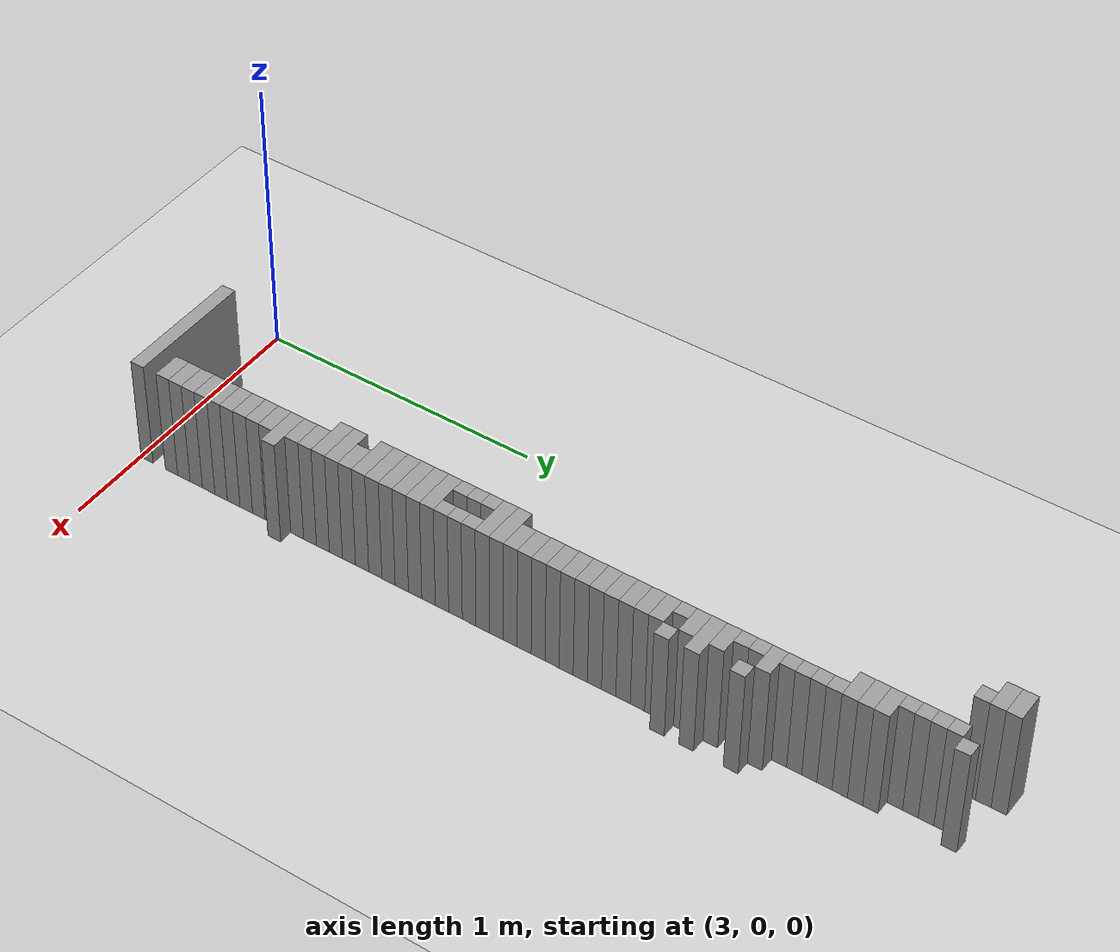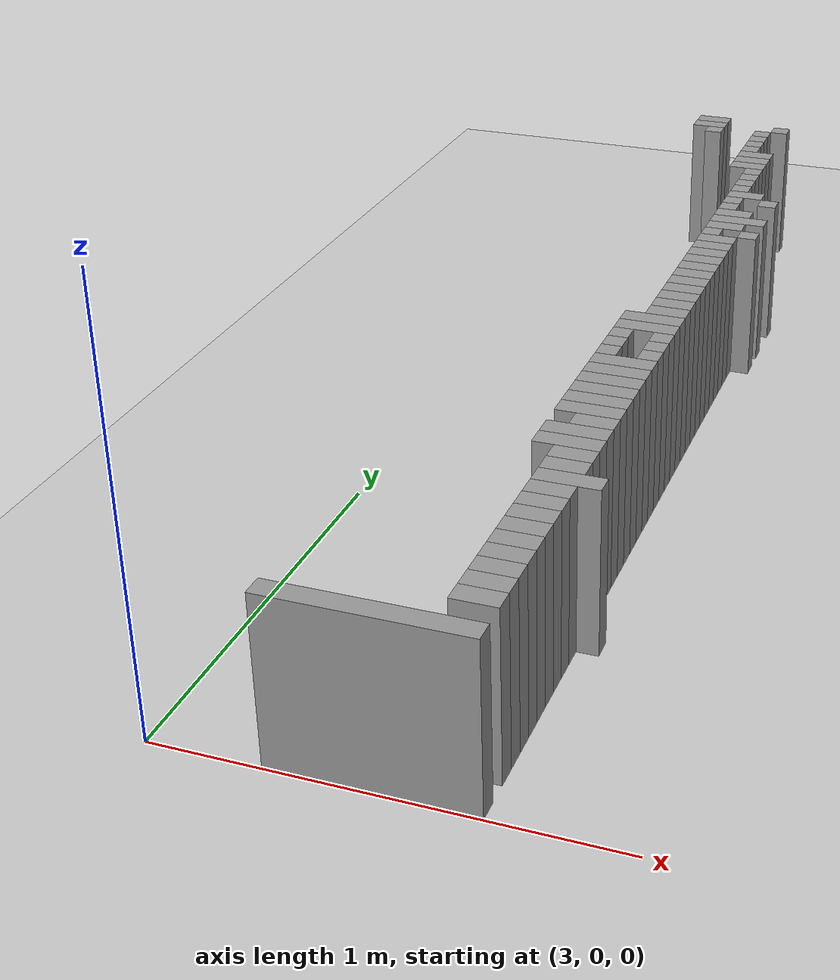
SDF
<sdf version="1.6">
 <world name="parking_mission">
  <include><uri>model://sun</uri></include>
  <include><uri>model://ground_plane</uri></include>
  <model name="wall_198">
   <static>true</static>
   <pose>3.4000 2.9250 0.2000 0 0 0</pose>
   <link name="link">
    <collision name="collision">
     <geometry><box><size>0.1000 0.0500 0.4000</size></box></geometry>
     <surface>
      <contact><ode><kp>20000.0</kp><kd>10.0</kd><max_vel>0.5</max_vel><min_depth>0.001</min_depth></ode></contact>
      <friction><ode><mu>1.0</mu><mu2>1.0</mu2></ode></friction>
     </surface>
    </collision>
    <visual name="visual">
     <geometry><box><size>0.1000 0.0500 0.4000</size></box></geometry>
     <material>
      <script><name>Gazebo/Grey</name><uri>file://media/materials/scripts/gazebo.material</uri></script>
     </material>
    </visual>
   </link>
  </model>
  <model name="wall_202">
   <static>true</static>
   <pose>3.4000 2.8750 0.2000 0 0 0</pose>
   <link name="link">
    <collision name="collision">
     <geometry><box><size>0.1000 0.0500 0.4000</size></box></geometry>
     <surface>
      <contact><ode><kp>20000.0</kp><kd>10.0</kd><max_vel>0.5</max_vel><min_depth>0.001</min_depth></ode></contact>
      <friction><ode><mu>1.0</mu><mu2>1.0</mu2></ode></friction>
     </surface>
    </collision>
    <visual name="visual">
     <geometry><box><size>0.1000 0.0500 0.4000</size></box></geometry>
     <material>
      <script><name>Gazebo/Grey</name><uri>file://media/materials/scripts/gazebo.material</uri></script>
     </material>
    </visual>
   </link>
  </model>
  <model name="wall_203">
   <static>true</static>
   <pose>3.6250 2.8750 0.2000 0 0 0</pose>
   <link name="link">
    <collision name="collision">
     <geometry><box><size>0.0500 0.0500 0.4000</size></box></geometry>
     <surface>
      <contact><ode><kp>20000.0</kp><kd>10.0</kd><max_vel>0.5</max_vel><min_depth>0.001</min_depth></ode></contact>
      <friction><ode><mu>1.0</mu><mu2>1.0</mu2></ode></friction>
     </surface>
    </collision>
    <visual name="visual">
     <geometry><box><size>0.0500 0.0500 0.4000</size></box></geometry>
     <material>
      <script><name>Gazebo/Grey</name><uri>file://media/materials/scripts/gazebo.material</uri></script>
     </material>
    </visual>
   </link>
  </model>
  <model name="wall_208">
   <static>true</static>
   <pose>3.4250 2.8250 0.2000 0 0 0</pose>
   <link name="link">
    <collision name="collision">
     <geometry><box><size>0.0500 0.0500 0.4000</size></box></geometry>
     <surface>
      <contact><ode><kp>20000.0</kp><kd>10.0</kd><max_vel>0.5</max_vel><min_depth>0.001</min_depth></ode></contact>
      <friction><ode><mu>1.0</mu><mu2>1.0</mu2></ode></friction>
     </surface>
    </collision>
    <visual name="visual">
     <geometry><box><size>0.0500 0.0500 0.4000</size></box></geometry>
     <material>
      <script><name>Gazebo/Grey</name><uri>file://media/materials/scripts/gazebo.material</uri></script>
     </material>
    </visual>
   </link>
  </model>
  <model name="wall_209">
   <static>true</static>
   <pose>3.5750 2.8250 0.2000 0 0 0</pose>
   <link name="link">
    <collision name="collision">
     <geometry><box><size>0.0500 0.0500 0.4000</size></box></geometry>
     <surface>
      <contact><ode><kp>20000.0</kp><kd>10.0</kd><max_vel>0.5</max_vel><min_depth>0.001</min_depth></ode></contact>
      <friction><ode><mu>1.0</mu><mu2>1.0</mu2></ode></friction>
     </surface>
    </collision>
    <visual name="visual">
     <geometry><box><size>0.0500 0.0500 0.4000</size></box></geometry>
     <material>
      <script><name>Gazebo/Grey</name><uri>file://media/materials/scripts/gazebo.material</uri></script>
     </material>
    </visual>
   </link>
  </model>
  <model name="wall_214">
   <static>true</static>
   <pose>3.5750 2.7750 0.2000 0 0 0</pose>
   <link name="link">
    <collision name="collision">
     <geometry><box><size>0.0500 0.0500 0.4000</size></box></geometry>
     <surface>
      <contact><ode><kp>20000.0</kp><kd>10.0</kd><max_vel>0.5</max_vel><min_depth>0.001</min_depth></ode></contact>
      <friction><ode><mu>1.0</mu><mu2>1.0</mu2></ode></friction>
     </surface>
    </collision>
    <visual name="visual">
     <geometry><box><size>0.0500 0.0500 0.4000</size></box></geometry>
     <material>
      <script><name>Gazebo/Grey</name><uri>file://media/materials/scripts/gazebo.material</uri></script>
     </material>
    </visual>
   </link>
  </model>
  <model name="wall_219">
   <static>true</static>
   <pose>3.5750 2.7250 0.2000 0 0 0</pose>
   <link name="link">
    <collision name="collision">
     <geometry><box><size>0.0500 0.0500 0.4000</size></box></geometry>
     <surface>
      <contact><ode><kp>20000.0</kp><kd>10.0</kd><max_vel>0.5</max_vel><min_depth>0.001</min_depth></ode></contact>
      <friction><ode><mu>1.0</mu><mu2>1.0</mu2></ode></friction>
     </surface>
    </collision>
    <visual name="visual">
     <geometry><box><size>0.0500 0.0500 0.4000</size></box></geometry>
     <material>
      <script><name>Gazebo/Grey</name><uri>file://media/materials/scripts/gazebo.material</uri></script>
     </material>
    </visual>
   </link>
  </model>
  <model name="wall_224">
   <static>true</static>
   <pose>3.5750 2.6750 0.2000 0 0 0</pose>
   <link name="link">
    <collision name="collision">
     <geometry><box><size>0.0500 0.0500 0.4000</size></box></geometry>
     <surface>
      <contact><ode><kp>20000.0</kp><kd>10.0</kd><max_vel>0.5</max_vel><min_depth>0.001</min_depth></ode></contact>
      <friction><ode><mu>1.0</mu><mu2>1.0</mu2></ode></friction>
     </surface>
    </collision>
    <visual name="visual">
     <geometry><box><size>0.0500 0.0500 0.4000</size></box></geometry>
     <material>
      <script><name>Gazebo/Grey</name><uri>file://media/materials/scripts/gazebo.material</uri></script>
     </material>
    </visual>
   </link>
  </model>
  <model name="wall_230">
   <static>true</static>
   <pose>3.6000 2.6250 0.2000 0 0 0</pose>
   <link name="link">
    <collision name="collision">
     <geometry><box><size>0.1000 0.0500 0.4000</size></box></geometry>
     <surface>
      <contact><ode><kp>20000.0</kp><kd>10.0</kd><max_vel>0.5</max_vel><min_depth>0.001</min_depth></ode></contact>
      <friction><ode><mu>1.0</mu><mu2>1.0</mu2></ode></friction>
     </surface>
    </collision>
    <visual name="visual">
     <geometry><box><size>0.1000 0.0500 0.4000</size></box></geometry>
     <material>
      <script><name>Gazebo/Grey</name><uri>file://media/materials/scripts/gazebo.material</uri></script>
     </material>
    </visual>
   </link>
  </model>
  <model name="wall_235">
   <static>true</static>
   <pose>3.6000 2.5750 0.2000 0 0 0</pose>
   <link name="link">
    <collision name="collision">
     <geometry><box><size>0.1000 0.0500 0.4000</size></box></geometry>
     <surface>
      <contact><ode><kp>20000.0</kp><kd>10.0</kd><max_vel>0.5</max_vel><min_depth>0.001</min_depth></ode></contact>
      <friction><ode><mu>1.0</mu><mu2>1.0</mu2></ode></friction>
     </surface>
    </collision>
    <visual name="visual">
     <geometry><box><size>0.1000 0.0500 0.4000</size></box></geometry>
     <material>
      <script><name>Gazebo/Grey</name><uri>file://media/materials/scripts/gazebo.material</uri></script>
     </material>
    </visual>
   </link>
  </model>
  <model name="wall_240">
   <static>true</static>
   <pose>3.6000 2.5250 0.2000 0 0 0</pose>
   <link name="link">
    <collision name="collision">
     <geometry><box><size>0.1000 0.0500 0.4000</size></box></geometry>
     <surface>
      <contact><ode><kp>20000.0</kp><kd>10.0</kd><max_vel>0.5</max_vel><min_depth>0.001</min_depth></ode></contact>
      <friction><ode><mu>1.0</mu><mu2>1.0</mu2></ode></friction>
     </surface>
    </collision>
    <visual name="visual">
     <geometry><box><size>0.1000 0.0500 0.4000</size></box></geometry>
     <material>
      <script><name>Gazebo/Grey</name><uri>file://media/materials/scripts/gazebo.material</uri></script>
     </material>
    </visual>
   </link>
  </model>
  <model name="wall_244">
   <static>true</static>
   <pose>3.6250 2.4750 0.2000 0 0 0</pose>
   <link name="link">
    <collision name="collision">
     <geometry><box><size>0.0500 0.0500 0.4000</size></box></geometry>
     <surface>
      <contact><ode><kp>20000.0</kp><kd>10.0</kd><max_vel>0.5</max_vel><min_depth>0.001</min_depth></ode></contact>
      <friction><ode><mu>1.0</mu><mu2>1.0</mu2></ode></friction>
     </surface>
    </collision>
    <visual name="visual">
     <geometry><box><size>0.0500 0.0500 0.4000</size></box></geometry>
     <material>
      <script><name>Gazebo/Grey</name><uri>file://media/materials/scripts/gazebo.material</uri></script>
     </material>
    </visual>
   </link>
  </model>
  <model name="wall_248">
   <static>true</static>
   <pose>3.6250 2.4250 0.2000 0 0 0</pose>
   <link name="link">
    <collision name="collision">
     <geometry><box><size>0.0500 0.0500 0.4000</size></box></geometry>
     <surface>
      <contact><ode><kp>20000.0</kp><kd>10.0</kd><max_vel>0.5</max_vel><min_depth>0.001</min_depth></ode></contact>
      <friction><ode><mu>1.0</mu><mu2>1.0</mu2></ode></friction>
     </surface>
    </collision>
    <visual name="visual">
     <geometry><box><size>0.0500 0.0500 0.4000</size></box></geometry>
     <material>
      <script><name>Gazebo/Grey</name><uri>file://media/materials/scripts/gazebo.material</uri></script>
     </material>
    </visual>
   </link>
  </model>
  <model name="wall_251">
   <static>true</static>
   <pose>3.6250 2.3750 0.2000 0 0 0</pose>
   <link name="link">
    <collision name="collision">
     <geometry><box><size>0.0500 0.0500 0.4000</size></box></geometry>
     <surface>
      <contact><ode><kp>20000.0</kp><kd>10.0</kd><max_vel>0.5</max_vel><min_depth>0.001</min_depth></ode></contact>
      <friction><ode><mu>1.0</mu><mu2>1.0</mu2></ode></friction>
     </surface>
    </collision>
    <visual name="visual">
     <geometry><box><size>0.0500 0.0500 0.4000</size></box></geometry>
     <material>
      <script><name>Gazebo/Grey</name><uri>file://media/materials/scripts/gazebo.material</uri></script>
     </material>
    </visual>
   </link>
  </model>
  <model name="wall_254">
   <static>true</static>
   <pose>3.6250 2.3250 0.2000 0 0 0</pose>
   <link name="link">
    <collision name="collision">
     <geometry><box><size>0.0500 0.0500 0.4000</size></box></geometry>
     <surface>
      <contact><ode><kp>20000.0</kp><kd>10.0</kd><max_vel>0.5</max_vel><min_depth>0.001</min_depth></ode></contact>
      <friction><ode><mu>1.0</mu><mu2>1.0</mu2></ode></friction>
     </surface>
    </collision>
    <visual name="visual">
     <geometry><box><size>0.0500 0.0500 0.4000</size></box></geometry>
     <material>
      <script><name>Gazebo/Grey</name><uri>file://media/materials/scripts/gazebo.material</uri></script>
     </material>
    </visual>
   </link>
  </model>
  <model name="wall_257">
   <static>true</static>
   <pose>3.6500 2.2750 0.2000 0 0 0</pose>
   <link name="link">
    <collision name="collision">
     <geometry><box><size>0.1000 0.0500 0.4000</size></box></geometry>
     <surface>
      <contact><ode><kp>20000.0</kp><kd>10.0</kd><max_vel>0.5</max_vel><min_depth>0.001</min_depth></ode></contact>
      <friction><ode><mu>1.0</mu><mu2>1.0</mu2></ode></friction>
     </surface>
    </collision>
    <visual name="visual">
     <geometry><box><size>0.1000 0.0500 0.4000</size></box></geometry>
     <material>
      <script><name>Gazebo/Grey</name><uri>file://media/materials/scripts/gazebo.material</uri></script>
     </material>
    </visual>
   </link>
  </model>
  <model name="wall_260">
   <static>true</static>
   <pose>3.6250 2.2250 0.2000 0 0 0</pose>
   <link name="link">
    <collision name="collision">
     <geometry><box><size>0.0500 0.0500 0.4000</size></box></geometry>
     <surface>
      <contact><ode><kp>20000.0</kp><kd>10.0</kd><max_vel>0.5</max_vel><min_depth>0.001</min_depth></ode></contact>
      <friction><ode><mu>1.0</mu><mu2>1.0</mu2></ode></friction>
     </surface>
    </collision>
    <visual name="visual">
     <geometry><box><size>0.0500 0.0500 0.4000</size></box></geometry>
     <material>
      <script><name>Gazebo/Grey</name><uri>file://media/materials/scripts/gazebo.material</uri></script>
     </material>
    </visual>
   </link>
  </model>
  <model name="wall_261">
   <static>true</static>
   <pose>3.7250 2.2250 0.2000 0 0 0</pose>
   <link name="link">
    <collision name="collision">
     <geometry><box><size>0.0500 0.0500 0.4000</size></box></geometry>
     <surface>
      <contact><ode><kp>20000.0</kp><kd>10.0</kd><max_vel>0.5</max_vel><min_depth>0.001</min_depth></ode></contact>
      <friction><ode><mu>1.0</mu><mu2>1.0</mu2></ode></friction>
     </surface>
    </collision>
    <visual name="visual">
     <geometry><box><size>0.0500 0.0500 0.4000</size></box></geometry>
     <material>
      <script><name>Gazebo/Grey</name><uri>file://media/materials/scripts/gazebo.material</uri></script>
     </material>
    </visual>
   </link>
  </model>
  <model name="wall_264">
   <static>true</static>
   <pose>3.6250 2.1750 0.2000 0 0 0</pose>
   <link name="link">
    <collision name="collision">
     <geometry><box><size>0.0500 0.0500 0.4000</size></box></geometry>
     <surface>
      <contact><ode><kp>20000.0</kp><kd>10.0</kd><max_vel>0.5</max_vel><min_depth>0.001</min_depth></ode></contact>
      <friction><ode><mu>1.0</mu><mu2>1.0</mu2></ode></friction>
     </surface>
    </collision>
    <visual name="visual">
     <geometry><box><size>0.0500 0.0500 0.4000</size></box></geometry>
     <material>
      <script><name>Gazebo/Grey</name><uri>file://media/materials/scripts/gazebo.material</uri></script>
     </material>
    </visual>
   </link>
  </model>
  <model name="wall_267">
   <static>true</static>
   <pose>3.6500 2.1250 0.2000 0 0 0</pose>
   <link name="link">
    <collision name="collision">
     <geometry><box><size>0.1000 0.0500 0.4000</size></box></geometry>
     <surface>
      <contact><ode><kp>20000.0</kp><kd>10.0</kd><max_vel>0.5</max_vel><min_depth>0.001</min_depth></ode></contact>
      <friction><ode><mu>1.0</mu><mu2>1.0</mu2></ode></friction>
     </surface>
    </collision>
    <visual name="visual">
     <geometry><box><size>0.1000 0.0500 0.4000</size></box></geometry>
     <material>
      <script><name>Gazebo/Grey</name><uri>file://media/materials/scripts/gazebo.material</uri></script>
     </material>
    </visual>
   </link>
  </model>
  <model name="wall_270">
   <static>true</static>
   <pose>3.6750 2.0750 0.2000 0 0 0</pose>
   <link name="link">
    <collision name="collision">
     <geometry><box><size>0.1500 0.0500 0.4000</size></box></geometry>
     <surface>
      <contact><ode><kp>20000.0</kp><kd>10.0</kd><max_vel>0.5</max_vel><min_depth>0.001</min_depth></ode></contact>
      <friction><ode><mu>1.0</mu><mu2>1.0</mu2></ode></friction>
     </surface>
    </collision>
    <visual name="visual">
     <geometry><box><size>0.1500 0.0500 0.4000</size></box></geometry>
     <material>
      <script><name>Gazebo/Grey</name><uri>file://media/materials/scripts/gazebo.material</uri></script>
     </material>
    </visual>
   </link>
  </model>
  <model name="wall_273">
   <static>true</static>
   <pose>3.6500 2.0250 0.2000 0 0 0</pose>
   <link name="link">
    <collision name="collision">
     <geometry><box><size>0.1000 0.0500 0.4000</size></box></geometry>
     <surface>
      <contact><ode><kp>20000.0</kp><kd>10.0</kd><max_vel>0.5</max_vel><min_depth>0.001</min_depth></ode></contact>
      <friction><ode><mu>1.0</mu><mu2>1.0</mu2></ode></friction>
     </surface>
    </collision>
    <visual name="visual">
     <geometry><box><size>0.1000 0.0500 0.4000</size></box></geometry>
     <material>
      <script><name>Gazebo/Grey</name><uri>file://media/materials/scripts/gazebo.material</uri></script>
     </material>
    </visual>
   </link>
  </model>
  <model name="wall_276">
   <static>true</static>
   <pose>3.6250 1.9750 0.2000 0 0 0</pose>
   <link name="link">
    <collision name="collision">
     <geometry><box><size>0.0500 0.0500 0.4000</size></box></geometry>
     <surface>
      <contact><ode><kp>20000.0</kp><kd>10.0</kd><max_vel>0.5</max_vel><min_depth>0.001</min_depth></ode></contact>
      <friction><ode><mu>1.0</mu><mu2>1.0</mu2></ode></friction>
     </surface>
    </collision>
    <visual name="visual">
     <geometry><box><size>0.0500 0.0500 0.4000</size></box></geometry>
     <material>
      <script><name>Gazebo/Grey</name><uri>file://media/materials/scripts/gazebo.material</uri></script>
     </material>
    </visual>
   </link>
  </model>
  <model name="wall_277">
   <static>true</static>
   <pose>3.7250 1.9750 0.2000 0 0 0</pose>
   <link name="link">
    <collision name="collision">
     <geometry><box><size>0.0500 0.0500 0.4000</size></box></geometry>
     <surface>
      <contact><ode><kp>20000.0</kp><kd>10.0</kd><max_vel>0.5</max_vel><min_depth>0.001</min_depth></ode></contact>
      <friction><ode><mu>1.0</mu><mu2>1.0</mu2></ode></friction>
     </surface>
    </collision>
    <visual name="visual">
     <geometry><box><size>0.0500 0.0500 0.4000</size></box></geometry>
     <material>
      <script><name>Gazebo/Grey</name><uri>file://media/materials/scripts/gazebo.material</uri></script>
     </material>
    </visual>
   </link>
  </model>
  <model name="wall_284">
   <static>true</static>
   <pose>3.6500 1.9250 0.2000 0 0 0</pose>
   <link name="link">
    <collision name="collision">
     <geometry><box><size>0.1000 0.0500 0.4000</size></box></geometry>
     <surface>
      <contact><ode><kp>20000.0</kp><kd>10.0</kd><max_vel>0.5</max_vel><min_depth>0.001</min_depth></ode></contact>
      <friction><ode><mu>1.0</mu><mu2>1.0</mu2></ode></friction>
     </surface>
    </collision>
    <visual name="visual">
     <geometry><box><size>0.1000 0.0500 0.4000</size></box></geometry>
     <material>
      <script><name>Gazebo/Grey</name><uri>file://media/materials/scripts/gazebo.material</uri></script>
     </material>
    </visual>
   </link>
  </model>
  <model name="wall_289">
   <static>true</static>
   <pose>3.6500 1.8750 0.2000 0 0 0</pose>
   <link name="link">
    <collision name="collision">
     <geometry><box><size>0.1000 0.0500 0.4000</size></box></geometry>
     <surface>
      <contact><ode><kp>20000.0</kp><kd>10.0</kd><max_vel>0.5</max_vel><min_depth>0.001</min_depth></ode></contact>
      <friction><ode><mu>1.0</mu><mu2>1.0</mu2></ode></friction>
     </surface>
    </collision>
    <visual name="visual">
     <geometry><box><size>0.1000 0.0500 0.4000</size></box></geometry>
     <material>
      <script><name>Gazebo/Grey</name><uri>file://media/materials/scripts/gazebo.material</uri></script>
     </material>
    </visual>
   </link>
  </model>
  <model name="wall_293">
   <static>true</static>
   <pose>3.6500 1.8250 0.2000 0 0 0</pose>
   <link name="link">
    <collision name="collision">
     <geometry><box><size>0.1000 0.0500 0.4000</size></box></geometry>
     <surface>
      <contact><ode><kp>20000.0</kp><kd>10.0</kd><max_vel>0.5</max_vel><min_depth>0.001</min_depth></ode></contact>
      <friction><ode><mu>1.0</mu><mu2>1.0</mu2></ode></friction>
     </surface>
    </collision>
    <visual name="visual">
     <geometry><box><size>0.1000 0.0500 0.4000</size></box></geometry>
     <material>
      <script><name>Gazebo/Grey</name><uri>file://media/materials/scripts/gazebo.material</uri></script>
     </material>
    </visual>
   </link>
  </model>
  <model name="wall_297">
   <static>true</static>
   <pose>3.6500 1.7750 0.2000 0 0 0</pose>
   <link name="link">
    <collision name="collision">
     <geometry><box><size>0.1000 0.0500 0.4000</size></box></geometry>
     <surface>
      <contact><ode><kp>20000.0</kp><kd>10.0</kd><max_vel>0.5</max_vel><min_depth>0.001</min_depth></ode></contact>
      <friction><ode><mu>1.0</mu><mu2>1.0</mu2></ode></friction>
     </surface>
    </collision>
    <visual name="visual">
     <geometry><box><size>0.1000 0.0500 0.4000</size></box></geometry>
     <material>
      <script><name>Gazebo/Grey</name><uri>file://media/materials/scripts/gazebo.material</uri></script>
     </material>
    </visual>
   </link>
  </model>
  <model name="wall_300">
   <static>true</static>
   <pose>3.6500 1.7250 0.2000 0 0 0</pose>
   <link name="link">
    <collision name="collision">
     <geometry><box><size>0.1000 0.0500 0.4000</size></box></geometry>
     <surface>
      <contact><ode><kp>20000.0</kp><kd>10.0</kd><max_vel>0.5</max_vel><min_depth>0.001</min_depth></ode></contact>
      <friction><ode><mu>1.0</mu><mu2>1.0</mu2></ode></friction>
     </surface>
    </collision>
    <visual name="visual">
     <geometry><box><size>0.1000 0.0500 0.4000</size></box></geometry>
     <material>
      <script><name>Gazebo/Grey</name><uri>file://media/materials/scripts/gazebo.material</uri></script>
     </material>
    </visual>
   </link>
  </model>
  <model name="wall_302">
   <static>true</static>
   <pose>3.6500 1.6750 0.2000 0 0 0</pose>
   <link name="link">
    <collision name="collision">
     <geometry><box><size>0.1000 0.0500 0.4000</size></box></geometry>
     <surface>
      <contact><ode><kp>20000.0</kp><kd>10.0</kd><max_vel>0.5</max_vel><min_depth>0.001</min_depth></ode></contact>
      <friction><ode><mu>1.0</mu><mu2>1.0</mu2></ode></friction>
     </surface>
    </collision>
    <visual name="visual">
     <geometry><box><size>0.1000 0.0500 0.4000</size></box></geometry>
     <material>
      <script><name>Gazebo/Grey</name><uri>file://media/materials/scripts/gazebo.material</uri></script>
     </material>
    </visual>
   </link>
  </model>
  <model name="wall_304">
   <static>true</static>
   <pose>3.6500 1.6250 0.2000 0 0 0</pose>
   <link name="link">
    <collision name="collision">
     <geometry><box><size>0.1000 0.0500 0.4000</size></box></geometry>
     <surface>
      <contact><ode><kp>20000.0</kp><kd>10.0</kd><max_vel>0.5</max_vel><min_depth>0.001</min_depth></ode></contact>
      <friction><ode><mu>1.0</mu><mu2>1.0</mu2></ode></friction>
     </surface>
    </collision>
    <visual name="visual">
     <geometry><box><size>0.1000 0.0500 0.4000</size></box></geometry>
     <material>
      <script><name>Gazebo/Grey</name><uri>file://media/materials/scripts/gazebo.material</uri></script>
     </material>
    </visual>
   </link>
  </model>
  <model name="wall_306">
   <static>true</static>
   <pose>3.6500 1.5750 0.2000 0 0 0</pose>
   <link name="link">
    <collision name="collision">
     <geometry><box><size>0.1000 0.0500 0.4000</size></box></geometry>
     <surface>
      <contact><ode><kp>20000.0</kp><kd>10.0</kd><max_vel>0.5</max_vel><min_depth>0.001</min_depth></ode></contact>
      <friction><ode><mu>1.0</mu><mu2>1.0</mu2></ode></friction>
     </surface>
    </collision>
    <visual name="visual">
     <geometry><box><size>0.1000 0.0500 0.4000</size></box></geometry>
     <material>
      <script><name>Gazebo/Grey</name><uri>file://media/materials/scripts/gazebo.material</uri></script>
     </material>
    </visual>
   </link>
  </model>
  <model name="wall_308">
   <static>true</static>
   <pose>3.6500 1.5250 0.2000 0 0 0</pose>
   <link name="link">
    <collision name="collision">
     <geometry><box><size>0.1000 0.0500 0.4000</size></box></geometry>
     <surface>
      <contact><ode><kp>20000.0</kp><kd>10.0</kd><max_vel>0.5</max_vel><min_depth>0.001</min_depth></ode></contact>
      <friction><ode><mu>1.0</mu><mu2>1.0</mu2></ode></friction>
     </surface>
    </collision>
    <visual name="visual">
     <geometry><box><size>0.1000 0.0500 0.4000</size></box></geometry>
     <material>
      <script><name>Gazebo/Grey</name><uri>file://media/materials/scripts/gazebo.material</uri></script>
     </material>
    </visual>
   </link>
  </model>
  <model name="wall_310">
   <static>true</static>
   <pose>3.6500 1.4750 0.2000 0 0 0</pose>
   <link name="link">
    <collision name="collision">
     <geometry><box><size>0.1000 0.0500 0.4000</size></box></geometry>
     <surface>
      <contact><ode><kp>20000.0</kp><kd>10.0</kd><max_vel>0.5</max_vel><min_depth>0.001</min_depth></ode></contact>
      <friction><ode><mu>1.0</mu><mu2>1.0</mu2></ode></friction>
     </surface>
    </collision>
    <visual name="visual">
     <geometry><box><size>0.1000 0.0500 0.4000</size></box></geometry>
     <material>
      <script><name>Gazebo/Grey</name><uri>file://media/materials/scripts/gazebo.material</uri></script>
     </material>
    </visual>
   </link>
  </model>
  <model name="wall_312">
   <static>true</static>
   <pose>3.6500 1.4250 0.2000 0 0 0</pose>
   <link name="link">
    <collision name="collision">
     <geometry><box><size>0.1000 0.0500 0.4000</size></box></geometry>
     <surface>
      <contact><ode><kp>20000.0</kp><kd>10.0</kd><max_vel>0.5</max_vel><min_depth>0.001</min_depth></ode></contact>
      <friction><ode><mu>1.0</mu><mu2>1.0</mu2></ode></friction>
     </surface>
    </collision>
    <visual name="visual">
     <geometry><box><size>0.1000 0.0500 0.4000</size></box></geometry>
     <material>
      <script><name>Gazebo/Grey</name><uri>file://media/materials/scripts/gazebo.material</uri></script>
     </material>
    </visual>
   </link>
  </model>
  <model name="wall_314">
   <static>true</static>
   <pose>3.6250 1.3750 0.2000 0 0 0</pose>
   <link name="link">
    <collision name="collision">
     <geometry><box><size>0.1500 0.0500 0.4000</size></box></geometry>
     <surface>
      <contact><ode><kp>20000.0</kp><kd>10.0</kd><max_vel>0.5</max_vel><min_depth>0.001</min_depth></ode></contact>
      <friction><ode><mu>1.0</mu><mu2>1.0</mu2></ode></friction>
     </surface>
    </collision>
    <visual name="visual">
     <geometry><box><size>0.1500 0.0500 0.4000</size></box></geometry>
     <material>
      <script><name>Gazebo/Grey</name><uri>file://media/materials/scripts/gazebo.material</uri></script>
     </material>
    </visual>
   </link>
  </model>
  <model name="wall_316">
   <static>true</static>
   <pose>3.6250 1.3250 0.2000 0 0 0</pose>
   <link name="link">
    <collision name="collision">
     <geometry><box><size>0.1500 0.0500 0.4000</size></box></geometry>
     <surface>
      <contact><ode><kp>20000.0</kp><kd>10.0</kd><max_vel>0.5</max_vel><min_depth>0.001</min_depth></ode></contact>
      <friction><ode><mu>1.0</mu><mu2>1.0</mu2></ode></friction>
     </surface>
    </collision>
    <visual name="visual">
     <geometry><box><size>0.1500 0.0500 0.4000</size></box></geometry>
     <material>
      <script><name>Gazebo/Grey</name><uri>file://media/materials/scripts/gazebo.material</uri></script>
     </material>
    </visual>
   </link>
  </model>
  <model name="wall_318">
   <static>true</static>
   <pose>3.5750 1.2750 0.2000 0 0 0</pose>
   <link name="link">
    <collision name="collision">
     <geometry><box><size>0.0500 0.0500 0.4000</size></box></geometry>
     <surface>
      <contact><ode><kp>20000.0</kp><kd>10.0</kd><max_vel>0.5</max_vel><min_depth>0.001</min_depth></ode></contact>
      <friction><ode><mu>1.0</mu><mu2>1.0</mu2></ode></friction>
     </surface>
    </collision>
    <visual name="visual">
     <geometry><box><size>0.0500 0.0500 0.4000</size></box></geometry>
     <material>
      <script><name>Gazebo/Grey</name><uri>file://media/materials/scripts/gazebo.material</uri></script>
     </material>
    </visual>
   </link>
  </model>
  <model name="wall_319">
   <static>true</static>
   <pose>3.6750 1.2750 0.2000 0 0 0</pose>
   <link name="link">
    <collision name="collision">
     <geometry><box><size>0.0500 0.0500 0.4000</size></box></geometry>
     <surface>
      <contact><ode><kp>20000.0</kp><kd>10.0</kd><max_vel>0.5</max_vel><min_depth>0.001</min_depth></ode></contact>
      <friction><ode><mu>1.0</mu><mu2>1.0</mu2></ode></friction>
     </surface>
    </collision>
    <visual name="visual">
     <geometry><box><size>0.0500 0.0500 0.4000</size></box></geometry>
     <material>
      <script><name>Gazebo/Grey</name><uri>file://media/materials/scripts/gazebo.material</uri></script>
     </material>
    </visual>
   </link>
  </model>
  <model name="wall_321">
   <static>true</static>
   <pose>3.5750 1.2250 0.2000 0 0 0</pose>
   <link name="link">
    <collision name="collision">
     <geometry><box><size>0.0500 0.0500 0.4000</size></box></geometry>
     <surface>
      <contact><ode><kp>20000.0</kp><kd>10.0</kd><max_vel>0.5</max_vel><min_depth>0.001</min_depth></ode></contact>
      <friction><ode><mu>1.0</mu><mu2>1.0</mu2></ode></friction>
     </surface>
    </collision>
    <visual name="visual">
     <geometry><box><size>0.0500 0.0500 0.4000</size></box></geometry>
     <material>
      <script><name>Gazebo/Grey</name><uri>file://media/materials/scripts/gazebo.material</uri></script>
     </material>
    </visual>
   </link>
  </model>
  <model name="wall_322">
   <static>true</static>
   <pose>3.6750 1.2250 0.2000 0 0 0</pose>
   <link name="link">
    <collision name="collision">
     <geometry><box><size>0.0500 0.0500 0.4000</size></box></geometry>
     <surface>
      <contact><ode><kp>20000.0</kp><kd>10.0</kd><max_vel>0.5</max_vel><min_depth>0.001</min_depth></ode></contact>
      <friction><ode><mu>1.0</mu><mu2>1.0</mu2></ode></friction>
     </surface>
    </collision>
    <visual name="visual">
     <geometry><box><size>0.0500 0.0500 0.4000</size></box></geometry>
     <material>
      <script><name>Gazebo/Grey</name><uri>file://media/materials/scripts/gazebo.material</uri></script>
     </material>
    </visual>
   </link>
  </model>
  <model name="wall_325">
   <static>true</static>
   <pose>3.5750 1.1750 0.2000 0 0 0</pose>
   <link name="link">
    <collision name="collision">
     <geometry><box><size>0.0500 0.0500 0.4000</size></box></geometry>
     <surface>
      <contact><ode><kp>20000.0</kp><kd>10.0</kd><max_vel>0.5</max_vel><min_depth>0.001</min_depth></ode></contact>
      <friction><ode><mu>1.0</mu><mu2>1.0</mu2></ode></friction>
     </surface>
    </collision>
    <visual name="visual">
     <geometry><box><size>0.0500 0.0500 0.4000</size></box></geometry>
     <material>
      <script><name>Gazebo/Grey</name><uri>file://media/materials/scripts/gazebo.material</uri></script>
     </material>
    </visual>
   </link>
  </model>
  <model name="wall_326">
   <static>true</static>
   <pose>3.6750 1.1750 0.2000 0 0 0</pose>
   <link name="link">
    <collision name="collision">
     <geometry><box><size>0.0500 0.0500 0.4000</size></box></geometry>
     <surface>
      <contact><ode><kp>20000.0</kp><kd>10.0</kd><max_vel>0.5</max_vel><min_depth>0.001</min_depth></ode></contact>
      <friction><ode><mu>1.0</mu><mu2>1.0</mu2></ode></friction>
     </surface>
    </collision>
    <visual name="visual">
     <geometry><box><size>0.0500 0.0500 0.4000</size></box></geometry>
     <material>
      <script><name>Gazebo/Grey</name><uri>file://media/materials/scripts/gazebo.material</uri></script>
     </material>
    </visual>
   </link>
  </model>
  <model name="wall_328">
   <static>true</static>
   <pose>3.6250 1.1250 0.2000 0 0 0</pose>
   <link name="link">
    <collision name="collision">
     <geometry><box><size>0.1500 0.0500 0.4000</size></box></geometry>
     <surface>
      <contact><ode><kp>20000.0</kp><kd>10.0</kd><max_vel>0.5</max_vel><min_depth>0.001</min_depth></ode></contact>
      <friction><ode><mu>1.0</mu><mu2>1.0</mu2></ode></friction>
     </surface>
    </collision>
    <visual name="visual">
     <geometry><box><size>0.1500 0.0500 0.4000</size></box></geometry>
     <material>
      <script><name>Gazebo/Grey</name><uri>file://media/materials/scripts/gazebo.material</uri></script>
     </material>
    </visual>
   </link>
  </model>
  <model name="wall_330">
   <static>true</static>
   <pose>3.6250 1.0750 0.2000 0 0 0</pose>
   <link name="link">
    <collision name="collision">
     <geometry><box><size>0.1500 0.0500 0.4000</size></box></geometry>
     <surface>
      <contact><ode><kp>20000.0</kp><kd>10.0</kd><max_vel>0.5</max_vel><min_depth>0.001</min_depth></ode></contact>
      <friction><ode><mu>1.0</mu><mu2>1.0</mu2></ode></friction>
     </surface>
    </collision>
    <visual name="visual">
     <geometry><box><size>0.1500 0.0500 0.4000</size></box></geometry>
     <material>
      <script><name>Gazebo/Grey</name><uri>file://media/materials/scripts/gazebo.material</uri></script>
     </material>
    </visual>
   </link>
  </model>
  <model name="wall_334">
   <static>true</static>
   <pose>3.6250 1.0250 0.2000 0 0 0</pose>
   <link name="link">
    <collision name="collision">
     <geometry><box><size>0.1500 0.0500 0.4000</size></box></geometry>
     <surface>
      <contact><ode><kp>20000.0</kp><kd>10.0</kd><max_vel>0.5</max_vel><min_depth>0.001</min_depth></ode></contact>
      <friction><ode><mu>1.0</mu><mu2>1.0</mu2></ode></friction>
     </surface>
    </collision>
    <visual name="visual">
     <geometry><box><size>0.1500 0.0500 0.4000</size></box></geometry>
     <material>
      <script><name>Gazebo/Grey</name><uri>file://media/materials/scripts/gazebo.material</uri></script>
     </material>
    </visual>
   </link>
  </model>
  <model name="wall_337">
   <static>true</static>
   <pose>3.6250 0.9750 0.2000 0 0 0</pose>
   <link name="link">
    <collision name="collision">
     <geometry><box><size>0.1500 0.0500 0.4000</size></box></geometry>
     <surface>
      <contact><ode><kp>20000.0</kp><kd>10.0</kd><max_vel>0.5</max_vel><min_depth>0.001</min_depth></ode></contact>
      <friction><ode><mu>1.0</mu><mu2>1.0</mu2></ode></friction>
     </surface>
    </collision>
    <visual name="visual">
     <geometry><box><size>0.1500 0.0500 0.4000</size></box></geometry>
     <material>
      <script><name>Gazebo/Grey</name><uri>file://media/materials/scripts/gazebo.material</uri></script>
     </material>
    </visual>
   </link>
  </model>
  <model name="wall_340">
   <static>true</static>
   <pose>3.6250 0.9250 0.2000 0 0 0</pose>
   <link name="link">
    <collision name="collision">
     <geometry><box><size>0.1500 0.0500 0.4000</size></box></geometry>
     <surface>
      <contact><ode><kp>20000.0</kp><kd>10.0</kd><max_vel>0.5</max_vel><min_depth>0.001</min_depth></ode></contact>
      <friction><ode><mu>1.0</mu><mu2>1.0</mu2></ode></friction>
     </surface>
    </collision>
    <visual name="visual">
     <geometry><box><size>0.1500 0.0500 0.4000</size></box></geometry>
     <material>
      <script><name>Gazebo/Grey</name><uri>file://media/materials/scripts/gazebo.material</uri></script>
     </material>
    </visual>
   </link>
  </model>
  <model name="wall_343">
   <static>true</static>
   <pose>3.6250 0.8750 0.2000 0 0 0</pose>
   <link name="link">
    <collision name="collision">
     <geometry><box><size>0.1500 0.0500 0.4000</size></box></geometry>
     <surface>
      <contact><ode><kp>20000.0</kp><kd>10.0</kd><max_vel>0.5</max_vel><min_depth>0.001</min_depth></ode></contact>
      <friction><ode><mu>1.0</mu><mu2>1.0</mu2></ode></friction>
     </surface>
    </collision>
    <visual name="visual">
     <geometry><box><size>0.1500 0.0500 0.4000</size></box></geometry>
     <material>
      <script><name>Gazebo/Grey</name><uri>file://media/materials/scripts/gazebo.material</uri></script>
     </material>
    </visual>
   </link>
  </model>
  <model name="wall_345">
   <static>true</static>
   <pose>3.6500 0.8250 0.2000 0 0 0</pose>
   <link name="link">
    <collision name="collision">
     <geometry><box><size>0.1000 0.0500 0.4000</size></box></geometry>
     <surface>
      <contact><ode><kp>20000.0</kp><kd>10.0</kd><max_vel>0.5</max_vel><min_depth>0.001</min_depth></ode></contact>
      <friction><ode><mu>1.0</mu><mu2>1.0</mu2></ode></friction>
     </surface>
    </collision>
    <visual name="visual">
     <geometry><box><size>0.1000 0.0500 0.4000</size></box></geometry>
     <material>
      <script><name>Gazebo/Grey</name><uri>file://media/materials/scripts/gazebo.material</uri></script>
     </material>
    </visual>
   </link>
  </model>
  <model name="wall_348">
   <static>true</static>
   <pose>3.6250 0.7750 0.2000 0 0 0</pose>
   <link name="link">
    <collision name="collision">
     <geometry><box><size>0.1500 0.0500 0.4000</size></box></geometry>
     <surface>
      <contact><ode><kp>20000.0</kp><kd>10.0</kd><max_vel>0.5</max_vel><min_depth>0.001</min_depth></ode></contact>
      <friction><ode><mu>1.0</mu><mu2>1.0</mu2></ode></friction>
     </surface>
    </collision>
    <visual name="visual">
     <geometry><box><size>0.1500 0.0500 0.4000</size></box></geometry>
     <material>
      <script><name>Gazebo/Grey</name><uri>file://media/materials/scripts/gazebo.material</uri></script>
     </material>
    </visual>
   </link>
  </model>
  <model name="wall_351">
   <static>true</static>
   <pose>3.6250 0.7250 0.2000 0 0 0</pose>
   <link name="link">
    <collision name="collision">
     <geometry><box><size>0.1500 0.0500 0.4000</size></box></geometry>
     <surface>
      <contact><ode><kp>20000.0</kp><kd>10.0</kd><max_vel>0.5</max_vel><min_depth>0.001</min_depth></ode></contact>
      <friction><ode><mu>1.0</mu><mu2>1.0</mu2></ode></friction>
     </surface>
    </collision>
    <visual name="visual">
     <geometry><box><size>0.1500 0.0500 0.4000</size></box></geometry>
     <material>
      <script><name>Gazebo/Grey</name><uri>file://media/materials/scripts/gazebo.material</uri></script>
     </material>
    </visual>
   </link>
  </model>
  <model name="wall_354">
   <static>true</static>
   <pose>3.6500 0.6750 0.2000 0 0 0</pose>
   <link name="link">
    <collision name="collision">
     <geometry><box><size>0.1000 0.0500 0.4000</size></box></geometry>
     <surface>
      <contact><ode><kp>20000.0</kp><kd>10.0</kd><max_vel>0.5</max_vel><min_depth>0.001</min_depth></ode></contact>
      <friction><ode><mu>1.0</mu><mu2>1.0</mu2></ode></friction>
     </surface>
    </collision>
    <visual name="visual">
     <geometry><box><size>0.1000 0.0500 0.4000</size></box></geometry>
     <material>
      <script><name>Gazebo/Grey</name><uri>file://media/materials/scripts/gazebo.material</uri></script>
     </material>
    </visual>
   </link>
  </model>
  <model name="wall_356">
   <static>true</static>
   <pose>3.6500 0.6250 0.2000 0 0 0</pose>
   <link name="link">
    <collision name="collision">
     <geometry><box><size>0.1000 0.0500 0.4000</size></box></geometry>
     <surface>
      <contact><ode><kp>20000.0</kp><kd>10.0</kd><max_vel>0.5</max_vel><min_depth>0.001</min_depth></ode></contact>
      <friction><ode><mu>1.0</mu><mu2>1.0</mu2></ode></friction>
     </surface>
    </collision>
    <visual name="visual">
     <geometry><box><size>0.1000 0.0500 0.4000</size></box></geometry>
     <material>
      <script><name>Gazebo/Grey</name><uri>file://media/materials/scripts/gazebo.material</uri></script>
     </material>
    </visual>
   </link>
  </model>
  <model name="wall_358">
   <static>true</static>
   <pose>3.6750 0.5750 0.2000 0 0 0</pose>
   <link name="link">
    <collision name="collision">
     <geometry><box><size>0.1500 0.0500 0.4000</size></box></geometry>
     <surface>
      <contact><ode><kp>20000.0</kp><kd>10.0</kd><max_vel>0.5</max_vel><min_depth>0.001</min_depth></ode></contact>
      <friction><ode><mu>1.0</mu><mu2>1.0</mu2></ode></friction>
     </surface>
    </collision>
    <visual name="visual">
     <geometry><box><size>0.1500 0.0500 0.4000</size></box></geometry>
     <material>
      <script><name>Gazebo/Grey</name><uri>file://media/materials/scripts/gazebo.material</uri></script>
     </material>
    </visual>
   </link>
  </model>
  <model name="wall_360">
   <static>true</static>
   <pose>3.6500 0.5250 0.2000 0 0 0</pose>
   <link name="link">
    <collision name="collision">
     <geometry><box><size>0.1000 0.0500 0.4000</size></box></geometry>
     <surface>
      <contact><ode><kp>20000.0</kp><kd>10.0</kd><max_vel>0.5</max_vel><min_depth>0.001</min_depth></ode></contact>
      <friction><ode><mu>1.0</mu><mu2>1.0</mu2></ode></friction>
     </surface>
    </collision>
    <visual name="visual">
     <geometry><box><size>0.1000 0.0500 0.4000</size></box></geometry>
     <material>
      <script><name>Gazebo/Grey</name><uri>file://media/materials/scripts/gazebo.material</uri></script>
     </material>
    </visual>
   </link>
  </model>
  <model name="wall_362">
   <static>true</static>
   <pose>3.6500 0.4750 0.2000 0 0 0</pose>
   <link name="link">
    <collision name="collision">
     <geometry><box><size>0.1000 0.0500 0.4000</size></box></geometry>
     <surface>
      <contact><ode><kp>20000.0</kp><kd>10.0</kd><max_vel>0.5</max_vel><min_depth>0.001</min_depth></ode></contact>
      <friction><ode><mu>1.0</mu><mu2>1.0</mu2></ode></friction>
     </surface>
    </collision>
    <visual name="visual">
     <geometry><box><size>0.1000 0.0500 0.4000</size></box></geometry>
     <material>
      <script><name>Gazebo/Grey</name><uri>file://media/materials/scripts/gazebo.material</uri></script>
     </material>
    </visual>
   </link>
  </model>
  <model name="wall_364">
   <static>true</static>
   <pose>3.6500 0.4250 0.2000 0 0 0</pose>
   <link name="link">
    <collision name="collision">
     <geometry><box><size>0.1000 0.0500 0.4000</size></box></geometry>
     <surface>
      <contact><ode><kp>20000.0</kp><kd>10.0</kd><max_vel>0.5</max_vel><min_depth>0.001</min_depth></ode></contact>
      <friction><ode><mu>1.0</mu><mu2>1.0</mu2></ode></friction>
     </surface>
    </collision>
    <visual name="visual">
     <geometry><box><size>0.1000 0.0500 0.4000</size></box></geometry>
     <material>
      <script><name>Gazebo/Grey</name><uri>file://media/materials/scripts/gazebo.material</uri></script>
     </material>
    </visual>
   </link>
  </model>
  <model name="wall_366">
   <static>true</static>
   <pose>3.6500 0.3750 0.2000 0 0 0</pose>
   <link name="link">
    <collision name="collision">
     <geometry><box><size>0.1000 0.0500 0.4000</size></box></geometry>
     <surface>
      <contact><ode><kp>20000.0</kp><kd>10.0</kd><max_vel>0.5</max_vel><min_depth>0.001</min_depth></ode></contact>
      <friction><ode><mu>1.0</mu><mu2>1.0</mu2></ode></friction>
     </surface>
    </collision>
    <visual name="visual">
     <geometry><box><size>0.1000 0.0500 0.4000</size></box></geometry>
     <material>
      <script><name>Gazebo/Grey</name><uri>file://media/materials/scripts/gazebo.material</uri></script>
     </material>
    </visual>
   </link>
  </model>
  <model name="wall_368">
   <static>true</static>
   <pose>3.6500 0.3250 0.2000 0 0 0</pose>
   <link name="link">
    <collision name="collision">
     <geometry><box><size>0.1000 0.0500 0.4000</size></box></geometry>
     <surface>
      <contact><ode><kp>20000.0</kp><kd>10.0</kd><max_vel>0.5</max_vel><min_depth>0.001</min_depth></ode></contact>
      <friction><ode><mu>1.0</mu><mu2>1.0</mu2></ode></friction>
     </surface>
    </collision>
    <visual name="visual">
     <geometry><box><size>0.1000 0.0500 0.4000</size></box></geometry>
     <material>
      <script><name>Gazebo/Grey</name><uri>file://media/materials/scripts/gazebo.material</uri></script>
     </material>
    </visual>
   </link>
  </model>
  <model name="wall_370">
   <static>true</static>
   <pose>3.6500 0.2750 0.2000 0 0 0</pose>
   <link name="link">
    <collision name="collision">
     <geometry><box><size>0.1000 0.0500 0.4000</size></box></geometry>
     <surface>
      <contact><ode><kp>20000.0</kp><kd>10.0</kd><max_vel>0.5</max_vel><min_depth>0.001</min_depth></ode></contact>
      <friction><ode><mu>1.0</mu><mu2>1.0</mu2></ode></friction>
     </surface>
    </collision>
    <visual name="visual">
     <geometry><box><size>0.1000 0.0500 0.4000</size></box></geometry>
     <material>
      <script><name>Gazebo/Grey</name><uri>file://media/materials/scripts/gazebo.material</uri></script>
     </material>
    </visual>
   </link>
  </model>
  <model name="wall_372">
   <static>true</static>
   <pose>3.6500 0.2250 0.2000 0 0 0</pose>
   <link name="link">
    <collision name="collision">
     <geometry><box><size>0.1000 0.0500 0.4000</size></box></geometry>
     <surface>
      <contact><ode><kp>20000.0</kp><kd>10.0</kd><max_vel>0.5</max_vel><min_depth>0.001</min_depth></ode></contact>
      <friction><ode><mu>1.0</mu><mu2>1.0</mu2></ode></friction>
     </surface>
    </collision>
    <visual name="visual">
     <geometry><box><size>0.1000 0.0500 0.4000</size></box></geometry>
     <material>
      <script><name>Gazebo/Grey</name><uri>file://media/materials/scripts/gazebo.material</uri></script>
     </material>
    </visual>
   </link>
  </model>
  <model name="wall_374">
   <static>true</static>
   <pose>3.6500 0.1750 0.2000 0 0 0</pose>
   <link name="link">
    <collision name="collision">
     <geometry><box><size>0.1000 0.0500 0.4000</size></box></geometry>
     <surface>
      <contact><ode><kp>20000.0</kp><kd>10.0</kd><max_vel>0.5</max_vel><min_depth>0.001</min_depth></ode></contact>
      <friction><ode><mu>1.0</mu><mu2>1.0</mu2></ode></friction>
     </surface>
    </collision>
    <visual name="visual">
     <geometry><box><size>0.1000 0.0500 0.4000</size></box></geometry>
     <material>
      <script><name>Gazebo/Grey</name><uri>file://media/materials/scripts/gazebo.material</uri></script>
     </material>
    </visual>
   </link>
  </model>
  <model name="wall_379">
   <static>true</static>
   <pose>3.6500 0.1250 0.2000 0 0 0</pose>
   <link name="link">
    <collision name="collision">
     <geometry><box><size>0.1000 0.0500 0.4000</size></box></geometry>
     <surface>
      <contact><ode><kp>20000.0</kp><kd>10.0</kd><max_vel>0.5</max_vel><min_depth>0.001</min_depth></ode></contact>
      <friction><ode><mu>1.0</mu><mu2>1.0</mu2></ode></friction>
     </surface>
    </collision>
    <visual name="visual">
     <geometry><box><size>0.1000 0.0500 0.4000</size></box></geometry>
     <material>
      <script><name>Gazebo/Grey</name><uri>file://media/materials/scripts/gazebo.material</uri></script>
     </material>
    </visual>
   </link>
  </model>
  <model name="wall_386">
   <static>true</static>
   <pose>3.4750 0.0250 0.2000 0 0 0</pose>
   <link name="link">
    <collision name="collision">
     <geometry><box><size>0.4500 0.0500 0.4000</size></box></geometry>
     <surface>
      <contact><ode><kp>20000.0</kp><kd>10.0</kd><max_vel>0.5</max_vel><min_depth>0.001</min_depth></ode></contact>
      <friction><ode><mu>1.0</mu><mu2>1.0</mu2></ode></friction>
     </surface>
    </collision>
    <visual name="visual">
     <geometry><box><size>0.4500 0.0500 0.4000</size></box></geometry>
     <material>
      <script><name>Gazebo/Grey</name><uri>file://media/materials/scripts/gazebo.material</uri></script>
     </material>
    </visual>
   </link>
  </model>
 </world>
</sdf>
